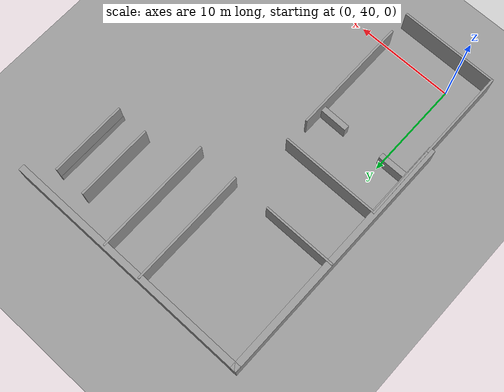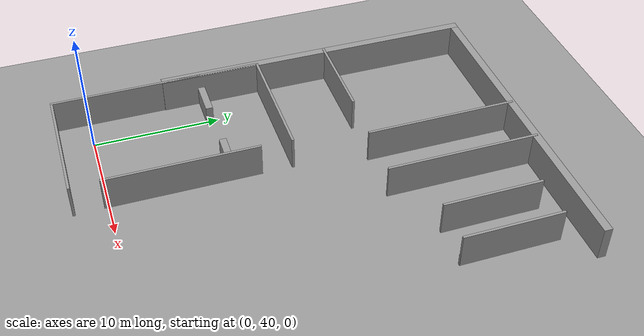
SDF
<sdf version="1.7">
 <world name="default">
  <model name="ground_plane">
   <static>1</static>
   <link name="link">
    <collision name="collision">
     <geometry><plane><normal>0 0 1</normal><size>100 100</size></plane></geometry>
     <surface><friction><ode><mu>100</mu><mu2>50</mu2></ode></friction></surface>
    </collision>
    <visual name="visual">
     <cast_shadows>0</cast_shadows>
     <geometry><plane><normal>0 0 1</normal><size>100 100</size></plane></geometry>
     <material>
      <script><uri>file://media/materials/scripts/gazebo.material</uri><name>Gazebo/Grey</name></script>
     </material>
    </visual>
   </link>
  </model>
  <model name="ground_plane_0">
   <static>1</static>
   <link name="link">
    <collision name="collision">
     <geometry><plane><normal>0 0 1</normal><size>100 100</size></plane></geometry>
     <surface><friction><ode><mu>100</mu><mu2>50</mu2></ode></friction></surface>
    </collision>
    <visual name="visual">
     <cast_shadows>0</cast_shadows>
     <geometry><plane><normal>0 0 1</normal><size>100 100</size></plane></geometry>
     <material>
      <script><uri>file://media/materials/scripts/gazebo.material</uri><name>Gazebo/Grey</name></script>
     </material>
    </visual>
   </link>
   <pose>-0.073857 81.0851 0 0 -0 0</pose>
  </model>
  <model name="grew_wall_long_vertial_0_clone">
   <model name="grey_wall_long">
    <link name="link">
     <pose>0 0 1.37589 0 -0 0</pose>
     <inertial>
      <inertia><ixx>0</ixx><ixy>0</ixy><ixz>0</ixz><iyy>0</iyy><iyz>0</iyz><izz>0</izz></inertia>
      <mass>0</mass>
     </inertial>
     <visual name="visual">
      <cast_shadows>0</cast_shadows>
      <geometry><box><size>25.8815 0.642976 2.8</size></box></geometry>
      <material>
       <script>
        <uri>model://grey_wall/materials/scripts</uri>
        <uri>model://grey_wall/materials/textures</uri>
        <name>vrc/grey_wall</name>
       </script>
       <shader type="pixel"><normal_map>__default__</normal_map></shader>
       <ambient>1 1 1 1</ambient>
       <diffuse>1 1 1 1</diffuse>
       <specular>0 0 0 1</specular>
       <emissive>0 0 0 1</emissive>
      </material>
     </visual>
     <collision name="collision">
      <geometry><box><size>25.8815 0.642976 2.8</size></box></geometry>
      <surface>
       <friction>
        <ode><mu>1</mu><mu2>1</mu2><fdir1>0 0 0</fdir1><slip1>0</slip1><slip2>0</slip2></ode>
        <torsional>
         <coefficient>1</coefficient>
         <patch_radius>0</patch_radius>
         <surface_radius>0</surface_radius>
         <use_patch_radius>1</use_patch_radius>
         <ode><slip>0</slip></ode>
        </torsional>
       </friction>
       <bounce><restitution_coefficient>0</restitution_coefficient><threshold>1e+06</threshold></bounce>
       <contact>
        <collide_without_contact>0</collide_without_contact>
        <collide_without_contact_bitmask>1</collide_without_contact_bitmask>
        <collide_bitmask>1</collide_bitmask>
        <ode>
         <soft_cfm>0</soft_cfm>
         <soft_erp>0.2</soft_erp>
         <kp>1e+13</kp>
         <kd>1</kd>
         <max_vel>0.01</max_vel>
         <min_depth>0</min_depth>
        </ode>
        <bullet>
         <split_impulse>1</split_impulse>
         <split_impulse_penetration_threshold>-0.01</split_impulse_penetration_threshold>
         <soft_cfm>0</soft_cfm>
         <soft_erp>0.2</soft_erp>
         <kp>1e+13</kp>
         <kd>1</kd>
        </bullet>
       </contact>
      </surface>
     </collision>
    </link>
    <static>1</static>
    <pose>1e-06 -0 0 0 -0 1.57003</pose>
   </model>
   <static>0</static>
   <pose>-2.80084 59.1647 0 0 -0 0</pose>
  </model>
  <model name="jiaoshi_clone_clone">
   <model name="grey_wall">
    <static>1</static>
    <link name="link">
     <pose>0 0 1.4 0 -0 0</pose>
     <collision name="collision"><geometry><box><size>7.5 0.2 2.8</size></box></geometry></collision>
     <visual name="visual">
      <cast_shadows>0</cast_shadows>
      <geometry><box><size>7.5 0.2 2.8</size></box></geometry>
      <material>
       <script>
        <uri>model://grey_wall/materials/scripts</uri>
        <uri>model://grey_wall/materials/textures</uri>
        <name>vrc/grey_wall</name>
       </script>
      </material>
     </visual>
    </link>
    <pose>-3.38172 4.2623 0 0 0 -1.56473</pose>
   </model>
   <model name="grey_wall_10m">
    <link name="link">
     <pose>1.25079 -0.023082 1.4 0 -0 0</pose>
     <inertial>
      <inertia><ixx>0</ixx><ixy>0</ixy><ixz>0</ixz><iyy>0</iyy><iyz>0</iyz><izz>0</izz></inertia>
      <mass>0</mass>
     </inertial>
     <visual name="visual">
      <cast_shadows>0</cast_shadows>
      <geometry><box><size>10.0157 0.2 2.8</size></box></geometry>
      <material>
       <script>
        <uri>model://grey_wall/materials/scripts</uri>
        <uri>model://grey_wall/materials/textures</uri>
        <name>vrc/grey_wall</name>
       </script>
       <shader type="pixel"/>
       <ambient>1 1 1 1</ambient>
       <diffuse>1 1 1 1</diffuse>
       <specular>0 0 0 1</specular>
       <emissive>0 0 0 1</emissive>
      </material>
     </visual>
     <collision name="collision">
      <geometry><box><size>10.0157 0.2 2.8</size></box></geometry>
      <surface>
       <friction>
        <ode><mu>1</mu><mu2>1</mu2><fdir1>0 0 0</fdir1><slip1>0</slip1><slip2>0</slip2></ode>
        <torsional>
         <coefficient>1</coefficient>
         <patch_radius>0</patch_radius>
         <surface_radius>0</surface_radius>
         <use_patch_radius>1</use_patch_radius>
         <ode><slip>0</slip></ode>
        </torsional>
       </friction>
       <bounce><restitution_coefficient>0</restitution_coefficient><threshold>1e+06</threshold></bounce>
       <contact>
        <collide_without_contact>0</collide_without_contact>
        <collide_without_contact_bitmask>1</collide_without_contact_bitmask>
        <collide_bitmask>1</collide_bitmask>
        <ode>
         <soft_cfm>0</soft_cfm>
         <soft_erp>0.2</soft_erp>
         <kp>1e+13</kp>
         <kd>1</kd>
         <max_vel>0.01</max_vel>
         <min_depth>0</min_depth>
        </ode>
        <bullet>
         <split_impulse>1</split_impulse>
         <split_impulse_penetration_threshold>-0.01</split_impulse_penetration_threshold>
         <soft_cfm>0</soft_cfm>
         <soft_erp>0.2</soft_erp>
         <kp>1e+13</kp>
         <kd>1</kd>
        </bullet>
       </contact>
      </surface>
     </collision>
    </link>
    <static>1</static>
    <pose>0.433183 -8.77625 0 0 -0 0</pose>
   </model>
   <model name="grey_wall_10m_0">
    <link name="link">
     <pose>1.25079 -0.023082 1.4 0 -0 0</pose>
     <inertial>
      <inertia><ixx>0</ixx><ixy>0</ixy><ixz>0</ixz><iyy>0</iyy><iyz>0</iyz><izz>0</izz></inertia>
      <mass>0</mass>
     </inertial>
     <visual name="visual">
      <cast_shadows>0</cast_shadows>
      <geometry><box><size>10.0157 0.2 2.8</size></box></geometry>
      <material>
       <script>
        <uri>model://grey_wall/materials/scripts</uri>
        <uri>model://grey_wall/materials/textures</uri>
        <name>vrc/grey_wall</name>
       </script>
       <shader type="pixel"/>
       <ambient>1 1 1 1</ambient>
       <diffuse>1 1 1 1</diffuse>
       <specular>0 0 0 1</specular>
       <emissive>0 0 0 1</emissive>
      </material>
     </visual>
     <collision name="collision">
      <geometry><box><size>10.0157 0.2 2.8</size></box></geometry>
      <surface>
       <friction>
        <ode><mu>1</mu><mu2>1</mu2><fdir1>0 0 0</fdir1><slip1>0</slip1><slip2>0</slip2></ode>
        <torsional>
         <coefficient>1</coefficient>
         <patch_radius>0</patch_radius>
         <surface_radius>0</surface_radius>
         <use_patch_radius>1</use_patch_radius>
         <ode><slip>0</slip></ode>
        </torsional>
       </friction>
       <bounce><restitution_coefficient>0</restitution_coefficient><threshold>1e+06</threshold></bounce>
       <contact>
        <collide_without_contact>0</collide_without_contact>
        <collide_without_contact_bitmask>1</collide_without_contact_bitmask>
        <collide_bitmask>1</collide_bitmask>
        <ode>
         <soft_cfm>0</soft_cfm>
         <soft_erp>0.2</soft_erp>
         <kp>1e+13</kp>
         <kd>1</kd>
         <max_vel>0.01</max_vel>
         <min_depth>0</min_depth>
        </ode>
        <bullet>
         <split_impulse>1</split_impulse>
         <split_impulse_penetration_threshold>-0.01</split_impulse_penetration_threshold>
         <soft_cfm>0</soft_cfm>
         <soft_erp>0.2</soft_erp>
         <kp>1e+13</kp>
         <kd>1</kd>
        </bullet>
       </contact>
      </surface>
     </collision>
    </link>
    <static>1</static>
    <pose>0.377364 7.92573 0 0 -0 0</pose>
   </model>
   <model name="grey_wall_12m_vertial">
    <link name="link">
     <pose>0.289112 -0.003891 1.4 0 0 -1.5701</pose>
     <inertial>
      <inertia><ixx>0</ixx><ixy>0</ixy><ixz>0</ixz><iyy>0</iyy><iyz>0</iyz><izz>0</izz></inertia>
      <mass>0</mass>
     </inertial>
     <visual name="visual">
      <cast_shadows>0</cast_shadows>
      <geometry><box><size>12.0527 0.2 2.8</size></box></geometry>
      <material>
       <script>
        <uri>model://grey_wall/materials/scripts</uri>
        <uri>model://grey_wall/materials/textures</uri>
        <name>vrc/grey_wall</name>
       </script>
       <shader type="pixel"/>
       <ambient>1 1 1 1</ambient>
       <diffuse>1 1 1 1</diffuse>
       <specular>0 0 0 1</specular>
       <emissive>0 0 0 1</emissive>
      </material>
     </visual>
     <collision name="collision">
      <geometry><box><size>12.0527 0.2 2.8</size></box></geometry>
      <surface>
       <friction>
        <ode><mu>1</mu><mu2>1</mu2><fdir1>0 0 0</fdir1><slip1>0</slip1><slip2>0</slip2></ode>
        <torsional>
         <coefficient>1</coefficient>
         <patch_radius>0</patch_radius>
         <surface_radius>0</surface_radius>
         <use_patch_radius>1</use_patch_radius>
         <ode><slip>0</slip></ode>
        </torsional>
       </friction>
       <bounce><restitution_coefficient>0</restitution_coefficient><threshold>1e+06</threshold></bounce>
       <contact>
        <collide_without_contact>0</collide_without_contact>
        <collide_without_contact_bitmask>1</collide_without_contact_bitmask>
        <collide_bitmask>1</collide_bitmask>
        <ode>
         <soft_cfm>0</soft_cfm>
         <soft_erp>0.2</soft_erp>
         <kp>1e+13</kp>
         <kd>1</kd>
         <max_vel>0.01</max_vel>
         <min_depth>0</min_depth>
        </ode>
        <bullet>
         <split_impulse>1</split_impulse>
         <split_impulse_penetration_threshold>-0.01</split_impulse_penetration_threshold>
         <soft_cfm>0</soft_cfm>
         <soft_erp>0.2</soft_erp>
         <kp>1e+13</kp>
         <kd>1</kd>
        </bullet>
       </contact>
      </surface>
     </collision>
    </link>
    <static>1</static>
    <pose>-3.63668 -2.87268 0 0 -0 0</pose>
   </model>
   <model name="grey_wall_12m_vertial_0">
    <link name="link">
     <pose>0.289112 -0.003891 1.4 0 0 -1.5701</pose>
     <inertial>
      <inertia><ixx>0</ixx><ixy>0</ixy><ixz>0</ixz><iyy>0</iyy><iyz>0</iyz><izz>0</izz></inertia>
      <mass>0</mass>
     </inertial>
     <visual name="visual">
      <cast_shadows>0</cast_shadows>
      <geometry><box><size>12.0527 0.2 2.8</size></box></geometry>
      <material>
       <script>
        <uri>model://grey_wall/materials/scripts</uri>
        <uri>model://grey_wall/materials/textures</uri>
        <name>vrc/grey_wall</name>
       </script>
       <shader type="pixel"/>
       <ambient>1 1 1 1</ambient>
       <diffuse>1 1 1 1</diffuse>
       <specular>0 0 0 1</specular>
       <emissive>0 0 0 1</emissive>
      </material>
     </visual>
     <collision name="collision">
      <geometry><box><size>12.0527 0.2 2.8</size></box></geometry>
      <surface>
       <friction>
        <ode><mu>1</mu><mu2>1</mu2><fdir1>0 0 0</fdir1><slip1>0</slip1><slip2>0</slip2></ode>
        <torsional>
         <coefficient>1</coefficient>
         <patch_radius>0</patch_radius>
         <surface_radius>0</surface_radius>
         <use_patch_radius>1</use_patch_radius>
         <ode><slip>0</slip></ode>
        </torsional>
       </friction>
       <bounce><restitution_coefficient>0</restitution_coefficient><threshold>1e+06</threshold></bounce>
       <contact>
        <collide_without_contact>0</collide_without_contact>
        <collide_without_contact_bitmask>1</collide_without_contact_bitmask>
        <collide_bitmask>1</collide_bitmask>
        <ode>
         <soft_cfm>0</soft_cfm>
         <soft_erp>0.2</soft_erp>
         <kp>1e+13</kp>
         <kd>1</kd>
         <max_vel>0.01</max_vel>
         <min_depth>0</min_depth>
        </ode>
        <bullet>
         <split_impulse>1</split_impulse>
         <split_impulse_penetration_threshold>-0.01</split_impulse_penetration_threshold>
         <soft_cfm>0</soft_cfm>
         <soft_erp>0.2</soft_erp>
         <kp>1e+13</kp>
         <kd>1</kd>
        </bullet>
       </contact>
      </surface>
     </collision>
    </link>
    <static>1</static>
    <pose>6.20786 -0.539083 0 0 -0 0</pose>
   </model>
   <static>0</static>
   <pose>0.70017 46.2344 0 0 -0 0</pose>
  </model>
  <model name="grey_wall_long_2">
   <link name="link">
    <pose>0 0 1.37589 0 -0 0</pose>
    <inertial>
     <inertia><ixx>0</ixx><ixy>0</ixy><ixz>0</ixz><iyy>0</iyy><iyz>0</iyz><izz>0</izz></inertia>
     <mass>0</mass>
    </inertial>
    <visual name="visual">
     <cast_shadows>0</cast_shadows>
     <geometry><box><size>25.8815 0.642976 2.8</size></box></geometry>
     <material>
      <script>
       <uri>model://grey_wall/materials/scripts</uri>
       <uri>model://grey_wall/materials/textures</uri>
       <name>vrc/grey_wall</name>
      </script>
      <shader type="pixel"><normal_map>__default__</normal_map></shader>
      <ambient>1 1 1 1</ambient>
      <diffuse>1 1 1 1</diffuse>
      <specular>0 0 0 1</specular>
      <emissive>0 0 0 1</emissive>
     </material>
    </visual>
    <collision name="collision">
     <geometry><box><size>25.8815 0.642976 2.8</size></box></geometry>
     <surface>
      <friction>
       <ode><mu>1</mu><mu2>1</mu2><fdir1>0 0 0</fdir1><slip1>0</slip1><slip2>0</slip2></ode>
       <torsional>
        <coefficient>1</coefficient>
        <patch_radius>0</patch_radius>
        <surface_radius>0</surface_radius>
        <use_patch_radius>1</use_patch_radius>
        <ode><slip>0</slip></ode>
       </torsional>
      </friction>
      <bounce><restitution_coefficient>0</restitution_coefficient><threshold>1e+06</threshold></bounce>
      <contact>
       <collide_without_contact>0</collide_without_contact>
       <collide_without_contact_bitmask>1</collide_without_contact_bitmask>
       <collide_bitmask>1</collide_bitmask>
       <ode>
        <soft_cfm>0</soft_cfm>
        <soft_erp>0.2</soft_erp>
        <kp>1e+13</kp>
        <kd>1</kd>
        <max_vel>0.01</max_vel>
        <min_depth>0</min_depth>
       </ode>
       <bullet>
        <split_impulse>1</split_impulse>
        <split_impulse_penetration_threshold>-0.01</split_impulse_penetration_threshold>
        <soft_cfm>0</soft_cfm>
        <soft_erp>0.2</soft_erp>
        <kp>1e+13</kp>
        <kd>1</kd>
       </bullet>
      </contact>
     </surface>
    </collision>
   </link>
   <static>1</static>
   <pose>9.87003 71.7729 0 0 -0 0</pose>
  </model>
  <model name="grey_wall_12m_vertial_2">
   <link name="link">
    <pose>0.289112 -0.003891 1.4 0 0 -1.5701</pose>
    <inertial>
     <inertia><ixx>0</ixx><ixy>0</ixy><ixz>0</ixz><iyy>0</iyy><iyz>0</iyz><izz>0</izz></inertia>
     <mass>0</mass>
    </inertial>
    <visual name="visual">
     <cast_shadows>0</cast_shadows>
     <geometry><box><size>12.0527 0.2 2.8</size></box></geometry>
     <material>
      <script>
       <uri>model://grey_wall/materials/scripts</uri>
       <uri>model://grey_wall/materials/textures</uri>
       <name>vrc/grey_wall</name>
      </script>
      <shader type="pixel"/>
      <ambient>1 1 1 1</ambient>
      <diffuse>1 1 1 1</diffuse>
      <specular>0 0 0 1</specular>
      <emissive>0 0 0 1</emissive>
     </material>
    </visual>
    <collision name="collision">
     <geometry><box><size>12.0527 0.2 2.8</size></box></geometry>
     <surface>
      <friction>
       <ode><mu>1</mu><mu2>1</mu2><fdir1>0 0 0</fdir1><slip1>0</slip1><slip2>0</slip2></ode>
       <torsional>
        <coefficient>1</coefficient>
        <patch_radius>0</patch_radius>
        <surface_radius>0</surface_radius>
        <use_patch_radius>1</use_patch_radius>
        <ode><slip>0</slip></ode>
       </torsional>
      </friction>
      <bounce><restitution_coefficient>0</restitution_coefficient><threshold>1e+06</threshold></bounce>
      <contact>
       <collide_without_contact>0</collide_without_contact>
       <collide_without_contact_bitmask>1</collide_without_contact_bitmask>
       <collide_bitmask>1</collide_bitmask>
       <ode>
        <soft_cfm>0</soft_cfm>
        <soft_erp>0.2</soft_erp>
        <kp>1e+13</kp>
        <kd>1</kd>
        <max_vel>0.01</max_vel>
        <min_depth>0</min_depth>
       </ode>
       <bullet>
        <split_impulse>1</split_impulse>
        <split_impulse_penetration_threshold>-0.01</split_impulse_penetration_threshold>
        <soft_cfm>0</soft_cfm>
        <soft_erp>0.2</soft_erp>
        <kp>1e+13</kp>
        <kd>1</kd>
       </bullet>
      </contact>
     </surface>
    </collision>
   </link>
   <static>1</static>
   <pose>12.1481 65.8336 0 0 -0 0</pose>
  </model>
  <model name="unit_box">
   <pose>-1.06879 49.329 0.834396 0 -3.2e-05 -0.001601</pose>
   <link name="link">
    <inertial>
     <mass>1</mass>
     <inertia>
      <ixx>0.166667</ixx>
      <ixy>0</ixy>
      <ixz>0</ixz>
      <iyy>0.166667</iyy>
      <iyz>0</iyz>
      <izz>0.166667</izz>
     </inertia>
    </inertial>
    <collision name="collision"><geometry><box><size>2.81196 0.562598 1.66888</size></box></geometry></collision>
    <visual name="visual">
     <geometry><box><size>2.81196 0.562598 1.66888</size></box></geometry>
     <material>
      <script><name>Gazebo/Grey</name><uri>file://media/materials/scripts/gazebo.material</uri></script>
     </material>
    </visual>
   </link>
  </model>
  <model name="unit_box_clone">
   <pose>5.67199 49.3971 0.834396 0 3.2e-05 -0.013566</pose>
   <link name="link">
    <inertial>
     <mass>1</mass>
     <inertia>
      <ixx>0.166667</ixx>
      <ixy>0</ixy>
      <ixz>0</ixz>
      <iyy>0.166667</iyy>
      <iyz>0</iyz>
      <izz>0.166667</izz>
     </inertia>
    </inertial>
    <collision name="collision"><geometry><box><size>2.81196 0.562598 1.66888</size></box></geometry></collision>
    <visual name="visual">
     <geometry><box><size>2.81196 0.562598 1.66888</size></box></geometry>
     <material>
      <script><name>Gazebo/Grey</name><uri>file://media/materials/scripts/gazebo.material</uri></script>
     </material>
    </visual>
   </link>
  </model>
  <model name="grey_wall_low_clone">
   <link name="link">
    <pose>0.546134 -0.568384 0.521109 0 -0 0</pose>
    <inertial>
     <inertia><ixx>0</ixx><ixy>0</ixy><ixz>0</ixz><iyy>0</iyy><iyz>0</iyz><izz>0</izz></inertia>
     <mass>0</mass>
    </inertial>
    <visual name="visual">
     <cast_shadows>0</cast_shadows>
     <geometry><box><size>7.82417 0.2 1.03493</size></box></geometry>
     <material>
      <script>
       <uri>model://grey_wall/materials/scripts</uri>
       <uri>model://grey_wall/materials/textures</uri>
       <name>vrc/grey_wall</name>
      </script>
      <shader type="pixel"/>
      <ambient>1 1 1 1</ambient>
      <diffuse>1 1 1 1</diffuse>
      <specular>0 0 0 1</specular>
      <emissive>0 0 0 1</emissive>
     </material>
    </visual>
    <collision name="collision">
     <geometry><box><size>7.82417 0.2 1.03493</size></box></geometry>
     <surface>
      <friction>
       <ode><mu>1</mu><mu2>1</mu2><fdir1>0 0 0</fdir1><slip1>0</slip1><slip2>0</slip2></ode>
       <torsional>
        <coefficient>1</coefficient>
        <patch_radius>0</patch_radius>
        <surface_radius>0</surface_radius>
        <use_patch_radius>1</use_patch_radius>
        <ode><slip>0</slip></ode>
       </torsional>
      </friction>
      <bounce><restitution_coefficient>0</restitution_coefficient><threshold>1e+06</threshold></bounce>
      <contact>
       <collide_without_contact>0</collide_without_contact>
       <collide_without_contact_bitmask>1</collide_without_contact_bitmask>
       <collide_bitmask>1</collide_bitmask>
       <ode>
        <soft_cfm>0</soft_cfm>
        <soft_erp>0.2</soft_erp>
        <kp>1e+13</kp>
        <kd>1</kd>
        <max_vel>0.01</max_vel>
        <min_depth>0</min_depth>
       </ode>
       <bullet>
        <split_impulse>1</split_impulse>
        <split_impulse_penetration_threshold>-0.01</split_impulse_penetration_threshold>
        <soft_cfm>0</soft_cfm>
        <soft_erp>0.2</soft_erp>
        <kp>1e+13</kp>
        <kd>1</kd>
       </bullet>
      </contact>
     </surface>
    </collision>
   </link>
   <static>1</static>
   <pose>20.9136 66.5007 -0 0 0 -1.56746</pose>
  </model>
  <model name="grey_wall_12m_vertial_2_clone">
   <link name="link">
    <pose>0.289112 -0.003891 1.4 0 0 -1.5701</pose>
    <inertial>
     <inertia><ixx>0</ixx><ixy>0</ixy><ixz>0</ixz><iyy>0</iyy><iyz>0</iyz><izz>0</izz></inertia>
     <mass>0</mass>
    </inertial>
    <visual name="visual">
     <cast_shadows>0</cast_shadows>
     <geometry><box><size>12.0527 0.2 2.8</size></box></geometry>
     <material>
      <script>
       <uri>model://grey_wall/materials/scripts</uri>
       <uri>model://grey_wall/materials/textures</uri>
       <name>vrc/grey_wall</name>
      </script>
      <shader type="pixel"/>
      <ambient>1 1 1 1</ambient>
      <diffuse>1 1 1 1</diffuse>
      <specular>0 0 0 1</specular>
      <emissive>0 0 0 1</emissive>
     </material>
    </visual>
    <collision name="collision">
     <geometry><box><size>12.0527 0.2 2.8</size></box></geometry>
     <surface>
      <friction>
       <ode><mu>1</mu><mu2>1</mu2><fdir1>0 0 0</fdir1><slip1>0</slip1><slip2>0</slip2></ode>
       <torsional>
        <coefficient>1</coefficient>
        <patch_radius>0</patch_radius>
        <surface_radius>0</surface_radius>
        <use_patch_radius>1</use_patch_radius>
        <ode><slip>0</slip></ode>
       </torsional>
      </friction>
      <bounce><restitution_coefficient>0</restitution_coefficient><threshold>1e+06</threshold></bounce>
      <contact>
       <collide_without_contact>0</collide_without_contact>
       <collide_without_contact_bitmask>1</collide_without_contact_bitmask>
       <collide_bitmask>1</collide_bitmask>
       <ode>
        <soft_cfm>0</soft_cfm>
        <soft_erp>0.2</soft_erp>
        <kp>1e+13</kp>
        <kd>1</kd>
        <max_vel>0.01</max_vel>
        <min_depth>0</min_depth>
       </ode>
       <bullet>
        <split_impulse>1</split_impulse>
        <split_impulse_penetration_threshold>-0.01</split_impulse_penetration_threshold>
        <soft_cfm>0</soft_cfm>
        <soft_erp>0.2</soft_erp>
        <kp>1e+13</kp>
        <kd>1</kd>
       </bullet>
      </contact>
     </surface>
    </collision>
   </link>
   <static>1</static>
   <pose>7.96276 65.8751 0 0 -0 0</pose>
  </model>
  <model name="grey_wall_0">
   <static>1</static>
   <link name="link">
    <pose>0 0 1.4 0 -0 0</pose>
    <collision name="collision"><geometry><box><size>7.5 0.2 2.8</size></box></geometry></collision>
    <visual name="visual">
     <cast_shadows>0</cast_shadows>
     <geometry><box><size>7.5 0.2 2.8</size></box></geometry>
     <material>
      <script>
       <uri>model://grey_wall/materials/scripts</uri>
       <uri>model://grey_wall/materials/textures</uri>
       <name>vrc/grey_wall</name>
      </script>
     </material>
    </visual>
   </link>
   <pose>0.681325 60.0146 0 0 -0 0</pose>
  </model>
  <model name="grey_wall_high">
   <link name="link">
    <pose>0.546134 -0.568384 0.521109 0 -0 0</pose>
    <inertial>
     <inertia><ixx>0</ixx><ixy>0</ixy><ixz>0</ixz><iyy>0</iyy><iyz>0</iyz><izz>0</izz></inertia>
     <mass>0</mass>
    </inertial>
    <visual name="visual">
     <cast_shadows>0</cast_shadows>
     <geometry><box><size>7.82417 0.2 4.57376</size></box></geometry>
     <material>
      <script>
       <uri>model://grey_wall/materials/scripts</uri>
       <uri>model://grey_wall/materials/textures</uri>
       <name>vrc/grey_wall</name>
      </script>
      <shader type="pixel"/>
      <ambient>1 1 1 1</ambient>
      <diffuse>1 1 1 1</diffuse>
      <specular>0 0 0 1</specular>
      <emissive>0 0 0 1</emissive>
     </material>
    </visual>
    <collision name="collision">
     <geometry><box><size>7.82417 0.2 4.57376</size></box></geometry>
     <surface>
      <friction>
       <ode><mu>1</mu><mu2>1</mu2><fdir1>0 0 0</fdir1><slip1>0</slip1><slip2>0</slip2></ode>
       <torsional>
        <coefficient>1</coefficient>
        <patch_radius>0</patch_radius>
        <surface_radius>0</surface_radius>
        <use_patch_radius>1</use_patch_radius>
        <ode><slip>0</slip></ode>
       </torsional>
      </friction>
      <bounce><restitution_coefficient>0</restitution_coefficient><threshold>1e+06</threshold></bounce>
      <contact>
       <collide_without_contact>0</collide_without_contact>
       <collide_without_contact_bitmask>1</collide_without_contact_bitmask>
       <collide_bitmask>1</collide_bitmask>
       <ode>
        <soft_cfm>0</soft_cfm>
        <soft_erp>0.2</soft_erp>
        <kp>1e+13</kp>
        <kd>1</kd>
        <max_vel>0.01</max_vel>
        <min_depth>0</min_depth>
       </ode>
       <bullet>
        <split_impulse>1</split_impulse>
        <split_impulse_penetration_threshold>-0.01</split_impulse_penetration_threshold>
        <soft_cfm>0</soft_cfm>
        <soft_erp>0.2</soft_erp>
        <kp>1e+13</kp>
        <kd>1</kd>
       </bullet>
      </contact>
     </surface>
    </collision>
   </link>
   <static>1</static>
   <pose>17.6659 66.5258 0 0 0 -1.56746</pose>
  </model>
  <model name="grey_wall_high_clone">
   <link name="link">
    <pose>0.546134 -0.568384 0.521109 0 -0 0</pose>
    <inertial>
     <inertia><ixx>0</ixx><ixy>0</ixy><ixz>0</ixz><iyy>0</iyy><iyz>0</iyz><izz>0</izz></inertia>
     <mass>0</mass>
    </inertial>
    <visual name="visual">
     <cast_shadows>0</cast_shadows>
     <geometry><box><size>7.82417 0.2 4.57376</size></box></geometry>
     <material>
      <script>
       <uri>model://grey_wall/materials/scripts</uri>
       <uri>model://grey_wall/materials/textures</uri>
       <name>vrc/grey_wall</name>
      </script>
      <shader type="pixel"/>
      <ambient>1 1 1 1</ambient>
      <diffuse>1 1 1 1</diffuse>
      <specular>0 0 0 1</specular>
      <emissive>0 0 0 1</emissive>
     </material>
    </visual>
    <collision name="collision">
     <geometry><box><size>7.82417 0.2 4.57376</size></box></geometry>
     <surface>
      <friction>
       <ode><mu>1</mu><mu2>1</mu2><fdir1>0 0 0</fdir1><slip1>0</slip1><slip2>0</slip2></ode>
       <torsional>
        <coefficient>1</coefficient>
        <patch_radius>0</patch_radius>
        <surface_radius>0</surface_radius>
        <use_patch_radius>1</use_patch_radius>
        <ode><slip>0</slip></ode>
       </torsional>
      </friction>
      <bounce><restitution_coefficient>0</restitution_coefficient><threshold>1e+06</threshold></bounce>
      <contact>
       <collide_without_contact>0</collide_without_contact>
       <collide_without_contact_bitmask>1</collide_without_contact_bitmask>
       <collide_bitmask>1</collide_bitmask>
       <ode>
        <soft_cfm>0</soft_cfm>
        <soft_erp>0.2</soft_erp>
        <kp>1e+13</kp>
        <kd>1</kd>
        <max_vel>0.01</max_vel>
        <min_depth>0</min_depth>
       </ode>
       <bullet>
        <split_impulse>1</split_impulse>
        <split_impulse_penetration_threshold>-0.01</split_impulse_penetration_threshold>
        <soft_cfm>0</soft_cfm>
        <soft_erp>0.2</soft_erp>
        <kp>1e+13</kp>
        <kd>1</kd>
       </bullet>
      </contact>
     </surface>
    </collision>
   </link>
   <static>1</static>
   <pose>20.9274 66.5234 0 0 0 -1.56746</pose>
  </model>
 </world>
</sdf>
